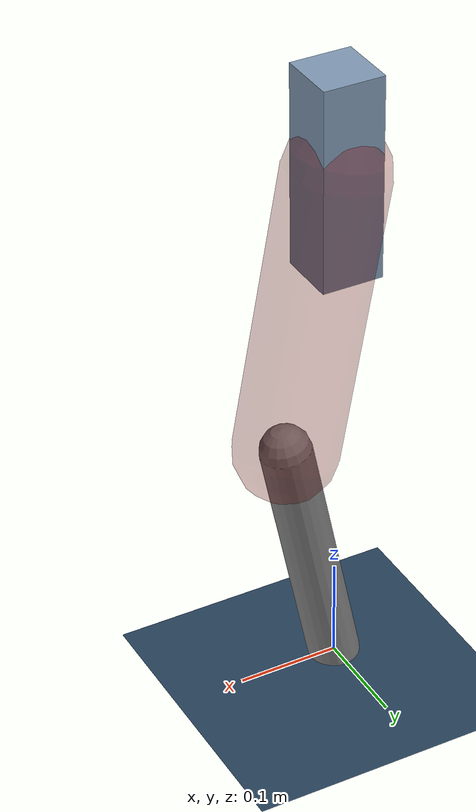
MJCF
<mujoco model="Hopper2D">
	<compiler inertiafromgeom="true" angle="radian" />
	<option timestep="0.001" integrator="implicit" cone="elliptic" solver="Newton" tolerance="1e-10" />

	<default>
		<geom contype="1" conaffinity="1" condim="3" friction="2 0.005 0.0001" solref="0.005 1" />
		<joint limited="true" damping="0.1" />
	</default>

	<asset>
		<texture name="skybox" type="skybox" builtin="gradient" rgb1=".4 .6 .8" rgb2="0 0 0" width="800" height="800" />
		<texture name="grid" type="2d" builtin="checker" rgb1=".1 .2 .3" rgb2=".2 .3 .4" width="300" height="300" mark="edge" markrgb=".2 .3 .4" />
		<material name="ground" texture="grid" texrepeat="1 1" texuniform="true" reflectance="0.1" />
		<material name="leg" rgba="0.5 0.6 0.7 1" />
	</asset>

	<worldbody>

		<geom name="floor" type="plane" size="5 5 0.25" material="ground" />

		<light directional="false" diffuse="0.8 0.8 0.8" specular="0.3 0.3 0.3" pos="0 0 2" dir="0 0 -1" />
		<light mode="targetbodycom" target="base" directional="false" diffuse="0.8 0.8 0.8" specular="0.3 0.3 0.3" pos="0 0 2" dir="0 0 -1" />

		<camera name="fixed" pos="0 -2 1" xyaxes="1 0 0 0 0 1" />
		<camera name="tracking" mode="trackcom" pos="0 -3 1" />

		<body name="root" pos="0 0 0.5324525906103125">
			<joint name="slide_x" type="slide" axis="1 0 0" range="-100 100" />
			<joint name="slide_z" type="slide" axis="0 0 1" range="0 10" />

			<body name="base" pos="0 0 0">
				<geom name="torso" type="box" size="0.03 0.03 0.1" mass="3.152" material="leg" />

				<body name="link1" pos="0 0 0" euler="0 1.3867801487711295 0">
					<joint type="hinge" axis="0 -1 0" pos="0 0 0" name="hinge1" limited="true" range="-3.14 3.14" stiffness="0" damping="0.1" />
					<geom name="thigh" type="capsule" fromto="0 0 0 0.2830257083000919 0 0" size="0.05" rgba="0.5 0 0 0.3" mass="0.9431694124102482" />

					<body name="link2" pos="0.2830257083000919 0 0" euler="0 0.384990538534156 0">
						<joint type="hinge" axis="0 -1 0" pos="0 0 0" name="hinge2" limited="true" range="-3.14 3.14" stiffness="0" damping="0.1" />
						<geom name="shank" type="capsule" fromto="0 0 0 0.2594268823102206 0 0" size="0.025" mass="0.45024150584817646" />

					</body>
				</body>
			</body>
		</body>
	</worldbody>

	<actuator>
		<motor name="torque1" joint="hinge1" ctrlrange="-120.86494202893724 120.86494202893724" ctrllimited="true" gear="1" />
		<motor name="torque2" joint="hinge2" ctrlrange="-96.12143767735539 96.12143767735539" ctrllimited="true" gear="1" />
	</actuator>
</mujoco>
